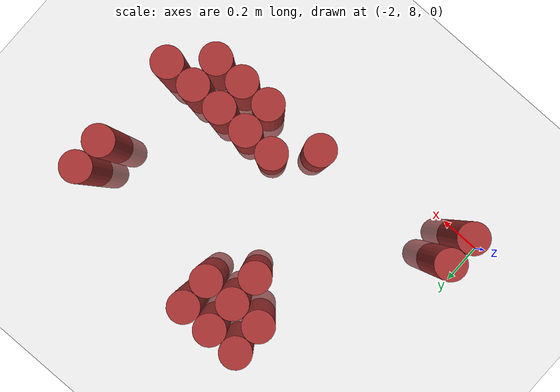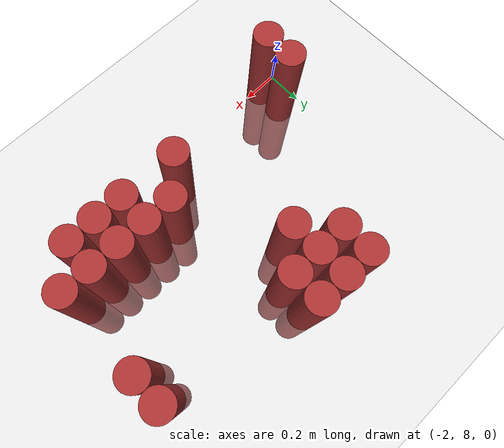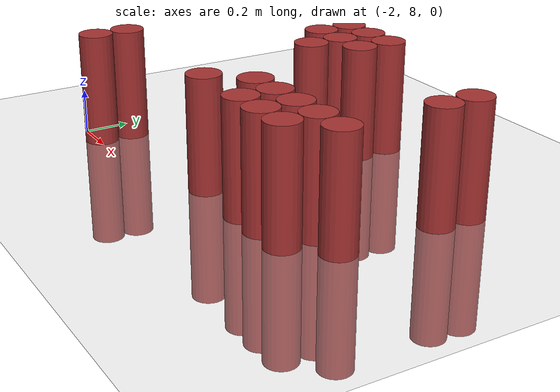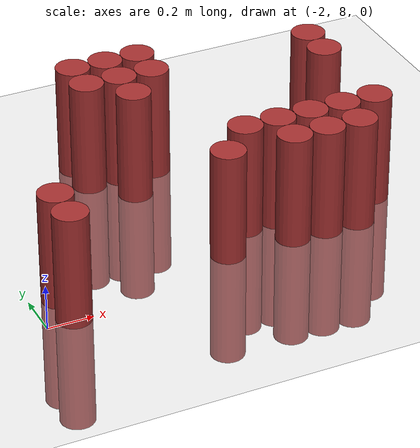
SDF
<sdf version="1.6">
 <world name="default">
  <model name="ground_plane">
   <static>1</static>
   <link name="link">
    <collision name="collision">
     <geometry><plane><normal>0 0 1</normal><size>100 100</size></plane></geometry>
     <surface><friction><ode><mu>100</mu><mu2>50</mu2></ode></friction></surface>
    </collision>
    <visual name="visual">
     <cast_shadows>0</cast_shadows>
     <geometry><plane><normal>0 0 1</normal><size>100 100</size></plane></geometry>
     <material>
      <script><uri>file://media/materials/scripts/gazebo.material</uri><name>Gazebo/Grey</name></script>
     </material>
    </visual>
   </link>
  </model>
  <model name="unit_cylinder_213">
   <static>1</static>
   <pose>-1.875000 8.025000 0.000000 0.000000 0.000000 0.000000</pose>
   <link name="link">
    <inertial>
     <mass>1</mass>
     <inertia><ixx>0.145833</ixx><ixy>0</ixy><ixz>0</ixz><iyy>0.145833</iyy><iyz>0</iyz><izz>0.125</izz></inertia>
    </inertial>
    <collision name="collision">
     <geometry><cylinder><radius>0.075000</radius><length>1</length></cylinder></geometry>
    </collision>
    <visual name="visual">
     <geometry><cylinder><radius>0.075000</radius><length>1</length></cylinder></geometry>
     <material>
      <ambient>0.648000 0.192000 0.192000 1</ambient>
      <diffuse>0.648000 0.192000 0.192000 1</diffuse>
     </material>
     <material>
      <script><name>Gazebo/Grey</name><uri>file://media/materials/scripts/gazebo.material</uri></script>
     </material>
    </visual>
    <sensor name="sensor_contact" type="contact"><contact><collision>collision</collision></contact></sensor>
   </link>
   <plugin filename="gz-sim-touchplugin-system" name="gz::sim::systems::TouchPlugin">
    <target>robot</target>
    <namespace>robot</namespace>
    <time>0.001</time>
    <enabled>true</enabled>
   </plugin>
  </model>
  <model name="unit_cylinder_214">
   <static>1</static>
   <pose>-1.875000 8.175000 0.000000 0.000000 0.000000 0.000000</pose>
   <link name="link">
    <inertial>
     <mass>1</mass>
     <inertia><ixx>0.145833</ixx><ixy>0</ixy><ixz>0</ixz><iyy>0.145833</iyy><iyz>0</iyz><izz>0.125</izz></inertia>
    </inertial>
    <collision name="collision">
     <geometry><cylinder><radius>0.075000</radius><length>1</length></cylinder></geometry>
    </collision>
    <visual name="visual">
     <geometry><cylinder><radius>0.075000</radius><length>1</length></cylinder></geometry>
     <material>
      <ambient>0.648000 0.192000 0.192000 1</ambient>
      <diffuse>0.648000 0.192000 0.192000 1</diffuse>
     </material>
     <material>
      <script><name>Gazebo/Grey</name><uri>file://media/materials/scripts/gazebo.material</uri></script>
     </material>
    </visual>
    <sensor name="sensor_contact" type="contact"><contact><collision>collision</collision></contact></sensor>
   </link>
   <plugin filename="gz-sim-touchplugin-system" name="gz::sim::systems::TouchPlugin">
    <target>robot</target>
    <namespace>robot</namespace>
    <time>0.001</time>
    <enabled>true</enabled>
   </plugin>
  </model>
  <model name="unit_cylinder_224">
   <static>1</static>
   <pose>-1.425000 8.925000 0.000000 0.000000 0.000000 0.000000</pose>
   <link name="link">
    <inertial>
     <mass>1</mass>
     <inertia><ixx>0.145833</ixx><ixy>0</ixy><ixz>0</ixz><iyy>0.145833</iyy><iyz>0</iyz><izz>0.125</izz></inertia>
    </inertial>
    <collision name="collision">
     <geometry><cylinder><radius>0.075000</radius><length>1</length></cylinder></geometry>
    </collision>
    <visual name="visual">
     <geometry><cylinder><radius>0.075000</radius><length>1</length></cylinder></geometry>
     <material>
      <ambient>0.648000 0.192000 0.192000 1</ambient>
      <diffuse>0.648000 0.192000 0.192000 1</diffuse>
     </material>
     <material>
      <script><name>Gazebo/Grey</name><uri>file://media/materials/scripts/gazebo.material</uri></script>
     </material>
    </visual>
    <sensor name="sensor_contact" type="contact"><contact><collision>collision</collision></contact></sensor>
   </link>
   <plugin filename="gz-sim-touchplugin-system" name="gz::sim::systems::TouchPlugin">
    <target>robot</target>
    <namespace>robot</namespace>
    <time>0.001</time>
    <enabled>true</enabled>
   </plugin>
  </model>
  <model name="unit_cylinder_225">
   <static>1</static>
   <pose>-1.425000 9.075000 0.000000 0.000000 0.000000 0.000000</pose>
   <link name="link">
    <inertial>
     <mass>1</mass>
     <inertia><ixx>0.145833</ixx><ixy>0</ixy><ixz>0</ixz><iyy>0.145833</iyy><iyz>0</iyz><izz>0.125</izz></inertia>
    </inertial>
    <collision name="collision">
     <geometry><cylinder><radius>0.075000</radius><length>1</length></cylinder></geometry>
    </collision>
    <visual name="visual">
     <geometry><cylinder><radius>0.075000</radius><length>1</length></cylinder></geometry>
     <material>
      <ambient>0.648000 0.192000 0.192000 1</ambient>
      <diffuse>0.648000 0.192000 0.192000 1</diffuse>
     </material>
     <material>
      <script><name>Gazebo/Grey</name><uri>file://media/materials/scripts/gazebo.material</uri></script>
     </material>
    </visual>
    <sensor name="sensor_contact" type="contact"><contact><collision>collision</collision></contact></sensor>
   </link>
   <plugin filename="gz-sim-touchplugin-system" name="gz::sim::systems::TouchPlugin">
    <target>robot</target>
    <namespace>robot</namespace>
    <time>0.001</time>
    <enabled>true</enabled>
   </plugin>
  </model>
  <model name="unit_cylinder_234">
   <static>1</static>
   <pose>-1.275000 8.775000 0.000000 0.000000 0.000000 0.000000</pose>
   <link name="link">
    <inertial>
     <mass>1</mass>
     <inertia><ixx>0.145833</ixx><ixy>0</ixy><ixz>0</ixz><iyy>0.145833</iyy><iyz>0</iyz><izz>0.125</izz></inertia>
    </inertial>
    <collision name="collision">
     <geometry><cylinder><radius>0.075000</radius><length>1</length></cylinder></geometry>
    </collision>
    <visual name="visual">
     <geometry><cylinder><radius>0.075000</radius><length>1</length></cylinder></geometry>
     <material>
      <ambient>0.648000 0.192000 0.192000 1</ambient>
      <diffuse>0.648000 0.192000 0.192000 1</diffuse>
     </material>
     <material>
      <script><name>Gazebo/Grey</name><uri>file://media/materials/scripts/gazebo.material</uri></script>
     </material>
    </visual>
    <sensor name="sensor_contact" type="contact"><contact><collision>collision</collision></contact></sensor>
   </link>
   <plugin filename="gz-sim-touchplugin-system" name="gz::sim::systems::TouchPlugin">
    <target>robot</target>
    <namespace>robot</namespace>
    <time>0.001</time>
    <enabled>true</enabled>
   </plugin>
  </model>
  <model name="unit_cylinder_235">
   <static>1</static>
   <pose>-1.275000 8.925000 0.000000 0.000000 0.000000 0.000000</pose>
   <link name="link">
    <inertial>
     <mass>1</mass>
     <inertia><ixx>0.145833</ixx><ixy>0</ixy><ixz>0</ixz><iyy>0.145833</iyy><iyz>0</iyz><izz>0.125</izz></inertia>
    </inertial>
    <collision name="collision">
     <geometry><cylinder><radius>0.075000</radius><length>1</length></cylinder></geometry>
    </collision>
    <visual name="visual">
     <geometry><cylinder><radius>0.075000</radius><length>1</length></cylinder></geometry>
     <material>
      <ambient>0.648000 0.192000 0.192000 1</ambient>
      <diffuse>0.648000 0.192000 0.192000 1</diffuse>
     </material>
     <material>
      <script><name>Gazebo/Grey</name><uri>file://media/materials/scripts/gazebo.material</uri></script>
     </material>
    </visual>
    <sensor name="sensor_contact" type="contact"><contact><collision>collision</collision></contact></sensor>
   </link>
   <plugin filename="gz-sim-touchplugin-system" name="gz::sim::systems::TouchPlugin">
    <target>robot</target>
    <namespace>robot</namespace>
    <time>0.001</time>
    <enabled>true</enabled>
   </plugin>
  </model>
  <model name="unit_cylinder_236">
   <static>1</static>
   <pose>-1.275000 9.075000 0.000000 0.000000 0.000000 0.000000</pose>
   <link name="link">
    <inertial>
     <mass>1</mass>
     <inertia><ixx>0.145833</ixx><ixy>0</ixy><ixz>0</ixz><iyy>0.145833</iyy><iyz>0</iyz><izz>0.125</izz></inertia>
    </inertial>
    <collision name="collision">
     <geometry><cylinder><radius>0.075000</radius><length>1</length></cylinder></geometry>
    </collision>
    <visual name="visual">
     <geometry><cylinder><radius>0.075000</radius><length>1</length></cylinder></geometry>
     <material>
      <ambient>0.648000 0.192000 0.192000 1</ambient>
      <diffuse>0.648000 0.192000 0.192000 1</diffuse>
     </material>
     <material>
      <script><name>Gazebo/Grey</name><uri>file://media/materials/scripts/gazebo.material</uri></script>
     </material>
    </visual>
    <sensor name="sensor_contact" type="contact"><contact><collision>collision</collision></contact></sensor>
   </link>
   <plugin filename="gz-sim-touchplugin-system" name="gz::sim::systems::TouchPlugin">
    <target>robot</target>
    <namespace>robot</namespace>
    <time>0.001</time>
    <enabled>true</enabled>
   </plugin>
  </model>
  <model name="unit_cylinder_243">
   <static>1</static>
   <pose>-1.125000 8.175000 0.000000 0.000000 0.000000 0.000000</pose>
   <link name="link">
    <inertial>
     <mass>1</mass>
     <inertia><ixx>0.145833</ixx><ixy>0</ixy><ixz>0</ixz><iyy>0.145833</iyy><iyz>0</iyz><izz>0.125</izz></inertia>
    </inertial>
    <collision name="collision">
     <geometry><cylinder><radius>0.075000</radius><length>1</length></cylinder></geometry>
    </collision>
    <visual name="visual">
     <geometry><cylinder><radius>0.075000</radius><length>1</length></cylinder></geometry>
     <material>
      <ambient>0.648000 0.192000 0.192000 1</ambient>
      <diffuse>0.648000 0.192000 0.192000 1</diffuse>
     </material>
     <material>
      <script><name>Gazebo/Grey</name><uri>file://media/materials/scripts/gazebo.material</uri></script>
     </material>
    </visual>
    <sensor name="sensor_contact" type="contact"><contact><collision>collision</collision></contact></sensor>
   </link>
   <plugin filename="gz-sim-touchplugin-system" name="gz::sim::systems::TouchPlugin">
    <target>robot</target>
    <namespace>robot</namespace>
    <time>0.001</time>
    <enabled>true</enabled>
   </plugin>
  </model>
  <model name="unit_cylinder_244">
   <static>1</static>
   <pose>-1.125000 8.925000 0.000000 0.000000 0.000000 0.000000</pose>
   <link name="link">
    <inertial>
     <mass>1</mass>
     <inertia><ixx>0.145833</ixx><ixy>0</ixy><ixz>0</ixz><iyy>0.145833</iyy><iyz>0</iyz><izz>0.125</izz></inertia>
    </inertial>
    <collision name="collision">
     <geometry><cylinder><radius>0.075000</radius><length>1</length></cylinder></geometry>
    </collision>
    <visual name="visual">
     <geometry><cylinder><radius>0.075000</radius><length>1</length></cylinder></geometry>
     <material>
      <ambient>0.648000 0.192000 0.192000 1</ambient>
      <diffuse>0.648000 0.192000 0.192000 1</diffuse>
     </material>
     <material>
      <script><name>Gazebo/Grey</name><uri>file://media/materials/scripts/gazebo.material</uri></script>
     </material>
    </visual>
    <sensor name="sensor_contact" type="contact"><contact><collision>collision</collision></contact></sensor>
   </link>
   <plugin filename="gz-sim-touchplugin-system" name="gz::sim::systems::TouchPlugin">
    <target>robot</target>
    <namespace>robot</namespace>
    <time>0.001</time>
    <enabled>true</enabled>
   </plugin>
  </model>
  <model name="unit_cylinder_245">
   <static>1</static>
   <pose>-1.125000 9.075000 0.000000 0.000000 0.000000 0.000000</pose>
   <link name="link">
    <inertial>
     <mass>1</mass>
     <inertia><ixx>0.145833</ixx><ixy>0</ixy><ixz>0</ixz><iyy>0.145833</iyy><iyz>0</iyz><izz>0.125</izz></inertia>
    </inertial>
    <collision name="collision">
     <geometry><cylinder><radius>0.075000</radius><length>1</length></cylinder></geometry>
    </collision>
    <visual name="visual">
     <geometry><cylinder><radius>0.075000</radius><length>1</length></cylinder></geometry>
     <material>
      <ambient>0.648000 0.192000 0.192000 1</ambient>
      <diffuse>0.648000 0.192000 0.192000 1</diffuse>
     </material>
     <material>
      <script><name>Gazebo/Grey</name><uri>file://media/materials/scripts/gazebo.material</uri></script>
     </material>
    </visual>
    <sensor name="sensor_contact" type="contact"><contact><collision>collision</collision></contact></sensor>
   </link>
   <plugin filename="gz-sim-touchplugin-system" name="gz::sim::systems::TouchPlugin">
    <target>robot</target>
    <namespace>robot</namespace>
    <time>0.001</time>
    <enabled>true</enabled>
   </plugin>
  </model>
  <model name="unit_cylinder_249">
   <static>1</static>
   <pose>-0.975000 8.325000 0.000000 0.000000 0.000000 0.000000</pose>
   <link name="link">
    <inertial>
     <mass>1</mass>
     <inertia><ixx>0.145833</ixx><ixy>0</ixy><ixz>0</ixz><iyy>0.145833</iyy><iyz>0</iyz><izz>0.125</izz></inertia>
    </inertial>
    <collision name="collision">
     <geometry><cylinder><radius>0.075000</radius><length>1</length></cylinder></geometry>
    </collision>
    <visual name="visual">
     <geometry><cylinder><radius>0.075000</radius><length>1</length></cylinder></geometry>
     <material>
      <ambient>0.648000 0.192000 0.192000 1</ambient>
      <diffuse>0.648000 0.192000 0.192000 1</diffuse>
     </material>
     <material>
      <script><name>Gazebo/Grey</name><uri>file://media/materials/scripts/gazebo.material</uri></script>
     </material>
    </visual>
    <sensor name="sensor_contact" type="contact"><contact><collision>collision</collision></contact></sensor>
   </link>
   <plugin filename="gz-sim-touchplugin-system" name="gz::sim::systems::TouchPlugin">
    <target>robot</target>
    <namespace>robot</namespace>
    <time>0.001</time>
    <enabled>true</enabled>
   </plugin>
  </model>
  <model name="unit_cylinder_251">
   <static>1</static>
   <pose>-0.825000 8.175000 0.000000 0.000000 0.000000 0.000000</pose>
   <link name="link">
    <inertial>
     <mass>1</mass>
     <inertia><ixx>0.145833</ixx><ixy>0</ixy><ixz>0</ixz><iyy>0.145833</iyy><iyz>0</iyz><izz>0.125</izz></inertia>
    </inertial>
    <collision name="collision">
     <geometry><cylinder><radius>0.075000</radius><length>1</length></cylinder></geometry>
    </collision>
    <visual name="visual">
     <geometry><cylinder><radius>0.075000</radius><length>1</length></cylinder></geometry>
     <material>
      <ambient>0.648000 0.192000 0.192000 1</ambient>
      <diffuse>0.648000 0.192000 0.192000 1</diffuse>
     </material>
     <material>
      <script><name>Gazebo/Grey</name><uri>file://media/materials/scripts/gazebo.material</uri></script>
     </material>
    </visual>
    <sensor name="sensor_contact" type="contact"><contact><collision>collision</collision></contact></sensor>
   </link>
   <plugin filename="gz-sim-touchplugin-system" name="gz::sim::systems::TouchPlugin">
    <target>robot</target>
    <namespace>robot</namespace>
    <time>0.001</time>
    <enabled>true</enabled>
   </plugin>
  </model>
  <model name="unit_cylinder_252">
   <static>1</static>
   <pose>-0.825000 8.325000 0.000000 0.000000 0.000000 0.000000</pose>
   <link name="link">
    <inertial>
     <mass>1</mass>
     <inertia><ixx>0.145833</ixx><ixy>0</ixy><ixz>0</ixz><iyy>0.145833</iyy><iyz>0</iyz><izz>0.125</izz></inertia>
    </inertial>
    <collision name="collision">
     <geometry><cylinder><radius>0.075000</radius><length>1</length></cylinder></geometry>
    </collision>
    <visual name="visual">
     <geometry><cylinder><radius>0.075000</radius><length>1</length></cylinder></geometry>
     <material>
      <ambient>0.648000 0.192000 0.192000 1</ambient>
      <diffuse>0.648000 0.192000 0.192000 1</diffuse>
     </material>
     <material>
      <script><name>Gazebo/Grey</name><uri>file://media/materials/scripts/gazebo.material</uri></script>
     </material>
    </visual>
    <sensor name="sensor_contact" type="contact"><contact><collision>collision</collision></contact></sensor>
   </link>
   <plugin filename="gz-sim-touchplugin-system" name="gz::sim::systems::TouchPlugin">
    <target>robot</target>
    <namespace>robot</namespace>
    <time>0.001</time>
    <enabled>true</enabled>
   </plugin>
  </model>
  <model name="unit_cylinder_254">
   <static>1</static>
   <pose>-0.675000 8.175000 0.000000 0.000000 0.000000 0.000000</pose>
   <link name="link">
    <inertial>
     <mass>1</mass>
     <inertia><ixx>0.145833</ixx><ixy>0</ixy><ixz>0</ixz><iyy>0.145833</iyy><iyz>0</iyz><izz>0.125</izz></inertia>
    </inertial>
    <collision name="collision">
     <geometry><cylinder><radius>0.075000</radius><length>1</length></cylinder></geometry>
    </collision>
    <visual name="visual">
     <geometry><cylinder><radius>0.075000</radius><length>1</length></cylinder></geometry>
     <material>
      <ambient>0.648000 0.192000 0.192000 1</ambient>
      <diffuse>0.648000 0.192000 0.192000 1</diffuse>
     </material>
     <material>
      <script><name>Gazebo/Grey</name><uri>file://media/materials/scripts/gazebo.material</uri></script>
     </material>
    </visual>
    <sensor name="sensor_contact" type="contact"><contact><collision>collision</collision></contact></sensor>
   </link>
   <plugin filename="gz-sim-touchplugin-system" name="gz::sim::systems::TouchPlugin">
    <target>robot</target>
    <namespace>robot</namespace>
    <time>0.001</time>
    <enabled>true</enabled>
   </plugin>
  </model>
  <model name="unit_cylinder_255">
   <static>1</static>
   <pose>-0.675000 8.325000 0.000000 0.000000 0.000000 0.000000</pose>
   <link name="link">
    <inertial>
     <mass>1</mass>
     <inertia><ixx>0.145833</ixx><ixy>0</ixy><ixz>0</ixz><iyy>0.145833</iyy><iyz>0</iyz><izz>0.125</izz></inertia>
    </inertial>
    <collision name="collision">
     <geometry><cylinder><radius>0.075000</radius><length>1</length></cylinder></geometry>
    </collision>
    <visual name="visual">
     <geometry><cylinder><radius>0.075000</radius><length>1</length></cylinder></geometry>
     <material>
      <ambient>0.648000 0.192000 0.192000 1</ambient>
      <diffuse>0.648000 0.192000 0.192000 1</diffuse>
     </material>
     <material>
      <script><name>Gazebo/Grey</name><uri>file://media/materials/scripts/gazebo.material</uri></script>
     </material>
    </visual>
    <sensor name="sensor_contact" type="contact"><contact><collision>collision</collision></contact></sensor>
   </link>
   <plugin filename="gz-sim-touchplugin-system" name="gz::sim::systems::TouchPlugin">
    <target>robot</target>
    <namespace>robot</namespace>
    <time>0.001</time>
    <enabled>true</enabled>
   </plugin>
  </model>
  <model name="unit_cylinder_259">
   <static>1</static>
   <pose>-0.525000 8.175000 0.000000 0.000000 0.000000 0.000000</pose>
   <link name="link">
    <inertial>
     <mass>1</mass>
     <inertia><ixx>0.145833</ixx><ixy>0</ixy><ixz>0</ixz><iyy>0.145833</iyy><iyz>0</iyz><izz>0.125</izz></inertia>
    </inertial>
    <collision name="collision">
     <geometry><cylinder><radius>0.075000</radius><length>1</length></cylinder></geometry>
    </collision>
    <visual name="visual">
     <geometry><cylinder><radius>0.075000</radius><length>1</length></cylinder></geometry>
     <material>
      <ambient>0.648000 0.192000 0.192000 1</ambient>
      <diffuse>0.648000 0.192000 0.192000 1</diffuse>
     </material>
     <material>
      <script><name>Gazebo/Grey</name><uri>file://media/materials/scripts/gazebo.material</uri></script>
     </material>
    </visual>
    <sensor name="sensor_contact" type="contact"><contact><collision>collision</collision></contact></sensor>
   </link>
   <plugin filename="gz-sim-touchplugin-system" name="gz::sim::systems::TouchPlugin">
    <target>robot</target>
    <namespace>robot</namespace>
    <time>0.001</time>
    <enabled>true</enabled>
   </plugin>
  </model>
  <model name="unit_cylinder_260">
   <static>1</static>
   <pose>-0.525000 8.325000 0.000000 0.000000 0.000000 0.000000</pose>
   <link name="link">
    <inertial>
     <mass>1</mass>
     <inertia><ixx>0.145833</ixx><ixy>0</ixy><ixz>0</ixz><iyy>0.145833</iyy><iyz>0</iyz><izz>0.125</izz></inertia>
    </inertial>
    <collision name="collision">
     <geometry><cylinder><radius>0.075000</radius><length>1</length></cylinder></geometry>
    </collision>
    <visual name="visual">
     <geometry><cylinder><radius>0.075000</radius><length>1</length></cylinder></geometry>
     <material>
      <ambient>0.648000 0.192000 0.192000 1</ambient>
      <diffuse>0.648000 0.192000 0.192000 1</diffuse>
     </material>
     <material>
      <script><name>Gazebo/Grey</name><uri>file://media/materials/scripts/gazebo.material</uri></script>
     </material>
    </visual>
    <sensor name="sensor_contact" type="contact"><contact><collision>collision</collision></contact></sensor>
   </link>
   <plugin filename="gz-sim-touchplugin-system" name="gz::sim::systems::TouchPlugin">
    <target>robot</target>
    <namespace>robot</namespace>
    <time>0.001</time>
    <enabled>true</enabled>
   </plugin>
  </model>
  <model name="unit_cylinder_268">
   <static>1</static>
   <pose>-0.375000 8.325000 0.000000 0.000000 0.000000 0.000000</pose>
   <link name="link">
    <inertial>
     <mass>1</mass>
     <inertia><ixx>0.145833</ixx><ixy>0</ixy><ixz>0</ixz><iyy>0.145833</iyy><iyz>0</iyz><izz>0.125</izz></inertia>
    </inertial>
    <collision name="collision">
     <geometry><cylinder><radius>0.075000</radius><length>1</length></cylinder></geometry>
    </collision>
    <visual name="visual">
     <geometry><cylinder><radius>0.075000</radius><length>1</length></cylinder></geometry>
     <material>
      <ambient>0.648000 0.192000 0.192000 1</ambient>
      <diffuse>0.648000 0.192000 0.192000 1</diffuse>
     </material>
     <material>
      <script><name>Gazebo/Grey</name><uri>file://media/materials/scripts/gazebo.material</uri></script>
     </material>
    </visual>
    <sensor name="sensor_contact" type="contact"><contact><collision>collision</collision></contact></sensor>
   </link>
   <plugin filename="gz-sim-touchplugin-system" name="gz::sim::systems::TouchPlugin">
    <target>robot</target>
    <namespace>robot</namespace>
    <time>0.001</time>
    <enabled>true</enabled>
   </plugin>
  </model>
  <model name="unit_cylinder_269">
   <static>1</static>
   <pose>-0.375000 8.775000 0.000000 0.000000 0.000000 0.000000</pose>
   <link name="link">
    <inertial>
     <mass>1</mass>
     <inertia><ixx>0.145833</ixx><ixy>0</ixy><ixz>0</ixz><iyy>0.145833</iyy><iyz>0</iyz><izz>0.125</izz></inertia>
    </inertial>
    <collision name="collision">
     <geometry><cylinder><radius>0.075000</radius><length>1</length></cylinder></geometry>
    </collision>
    <visual name="visual">
     <geometry><cylinder><radius>0.075000</radius><length>1</length></cylinder></geometry>
     <material>
      <ambient>0.648000 0.192000 0.192000 1</ambient>
      <diffuse>0.648000 0.192000 0.192000 1</diffuse>
     </material>
     <material>
      <script><name>Gazebo/Grey</name><uri>file://media/materials/scripts/gazebo.material</uri></script>
     </material>
    </visual>
    <sensor name="sensor_contact" type="contact"><contact><collision>collision</collision></contact></sensor>
   </link>
   <plugin filename="gz-sim-touchplugin-system" name="gz::sim::systems::TouchPlugin">
    <target>robot</target>
    <namespace>robot</namespace>
    <time>0.001</time>
    <enabled>true</enabled>
   </plugin>
  </model>
  <model name="unit_cylinder_270">
   <static>1</static>
   <pose>-0.375000 8.925000 0.000000 0.000000 0.000000 0.000000</pose>
   <link name="link">
    <inertial>
     <mass>1</mass>
     <inertia><ixx>0.145833</ixx><ixy>0</ixy><ixz>0</ixz><iyy>0.145833</iyy><iyz>0</iyz><izz>0.125</izz></inertia>
    </inertial>
    <collision name="collision">
     <geometry><cylinder><radius>0.075000</radius><length>1</length></cylinder></geometry>
    </collision>
    <visual name="visual">
     <geometry><cylinder><radius>0.075000</radius><length>1</length></cylinder></geometry>
     <material>
      <ambient>0.648000 0.192000 0.192000 1</ambient>
      <diffuse>0.648000 0.192000 0.192000 1</diffuse>
     </material>
     <material>
      <script><name>Gazebo/Grey</name><uri>file://media/materials/scripts/gazebo.material</uri></script>
     </material>
    </visual>
    <sensor name="sensor_contact" type="contact"><contact><collision>collision</collision></contact></sensor>
   </link>
   <plugin filename="gz-sim-touchplugin-system" name="gz::sim::systems::TouchPlugin">
    <target>robot</target>
    <namespace>robot</namespace>
    <time>0.001</time>
    <enabled>true</enabled>
   </plugin>
  </model>
 </world>
</sdf>
